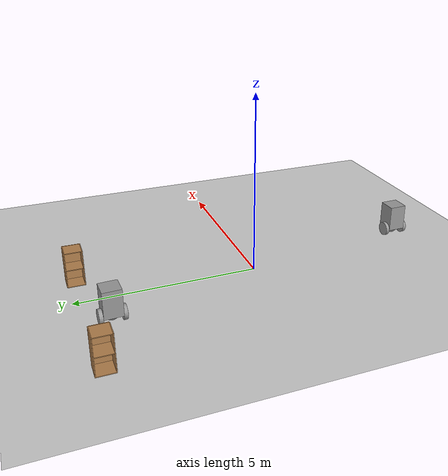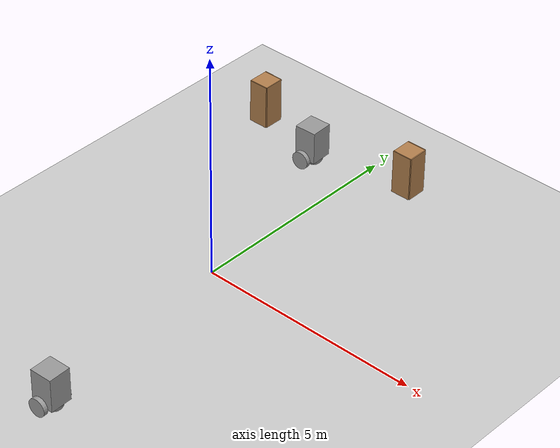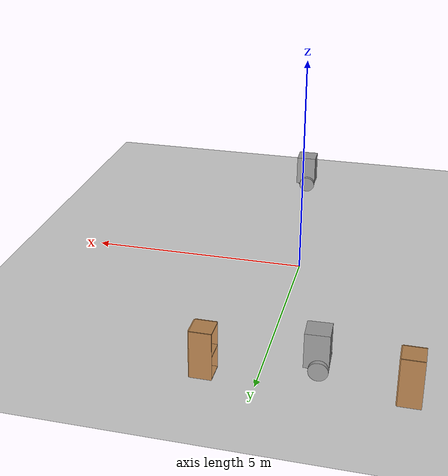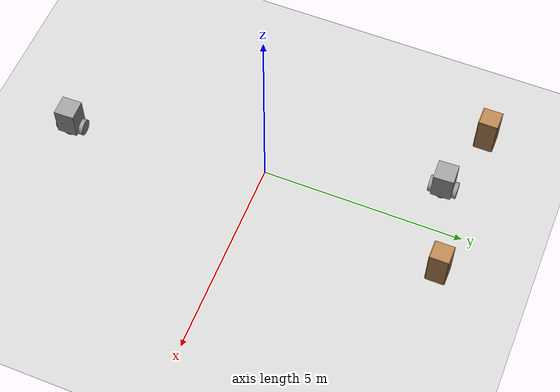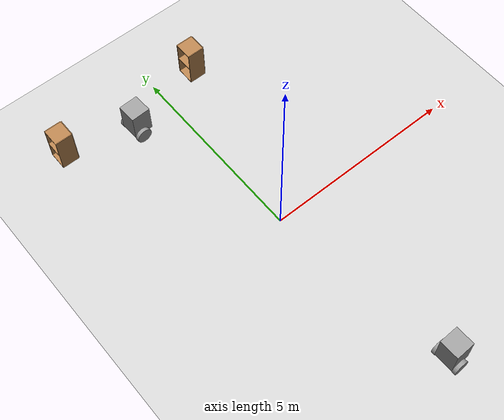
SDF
<sdf version="1.6">
 <world name="default">
  <model name="ground_plane">
   <static>1</static>
   <link name="link">
    <collision name="collision">
     <geometry><plane><normal>0 0 1</normal><size>100 100</size></plane></geometry>
     <surface><friction><ode><mu>100</mu><mu2>50</mu2></ode></friction></surface>
    </collision>
    <visual name="visual">
     <cast_shadows>0</cast_shadows>
     <geometry><plane><normal>0 0 1</normal><size>100 100</size></plane></geometry>
     <material>
      <script><uri>file://media/materials/scripts/gazebo.material</uri><name>Gazebo/Grey</name></script>
     </material>
    </visual>
   </link>
  </model>
  <model name="cabinet">
   <static>1</static>
   <link name="cabinet_bottom_plate">
    <inertial>
     <pose>0 0 -1 0 -0 0</pose>
     <inertia><ixx>2.05</ixx><ixy>0</ixy><ixz>0</ixz><iyy>2.05</iyy><iyz>0</iyz><izz>2.05</izz></inertia>
     <mass>25</mass>
    </inertial>
    <collision name="cabinet_bottom_plate_geom">
     <pose>0 0 0.01 0 -0 0</pose>
     <geometry><box><size>0.45 0.45 0.02</size></box></geometry>
    </collision>
    <visual name="cabinet_bottom_plate_geom_visual">
     <pose>0 0 0.01 0 -0 0</pose>
     <geometry><box><size>0.45 0.45 0.02</size></box></geometry>
     <material>
      <script><uri>file://media/materials/scripts/gazebo.material</uri><name>Gazebo/Wood</name></script>
     </material>
    </visual>
    <collision name="cabinet_bottom_plate_geom_cabinet_back_plate">
     <pose>0.235 0 0.51 0 -0 0</pose>
     <geometry><box><size>0.02 0.45 1.02</size></box></geometry>
    </collision>
    <visual name="cabinet_bottom_plate_geom_cabinet_back_plate_visual">
     <pose>0.235 0 0.51 0 -0 0</pose>
     <geometry><box><size>0.02 0.45 1.02</size></box></geometry>
     <material>
      <script><uri>file://media/materials/scripts/gazebo.material</uri><name>Gazebo/Wood</name></script>
     </material>
    </visual>
    <collision name="cabinet_bottom_plate_geom_cabinet_left_plate">
     <pose>0 0.235 0.51 0 -0 0</pose>
     <geometry><box><size>0.45 0.02 1.02</size></box></geometry>
    </collision>
    <visual name="cabinet_bottom_plate_geom_cabinet_left_plate_visual">
     <pose>0 0.235 0.51 0 -0 0</pose>
     <geometry><box><size>0.45 0.02 1.02</size></box></geometry>
     <material>
      <script><uri>file://media/materials/scripts/gazebo.material</uri><name>Gazebo/Wood</name></script>
     </material>
    </visual>
    <collision name="cabinet_bottom_plate_geom_cabinet_middle_plate">
     <pose>0 0 0.51 0 -0 0</pose>
     <geometry><box><size>0.45 0.45 0.02</size></box></geometry>
    </collision>
    <visual name="cabinet_bottom_plate_geom_cabinet_middle_plate_visual">
     <pose>0 0 0.51 0 -0 0</pose>
     <geometry><box><size>0.45 0.45 0.02</size></box></geometry>
     <material>
      <script><uri>file://media/materials/scripts/gazebo.material</uri><name>Gazebo/Wood</name></script>
     </material>
    </visual>
    <collision name="cabinet_bottom_plate_geom_cabinet_right_plate">
     <pose>0 -0.235 0.51 0 -0 0</pose>
     <geometry><box><size>0.45 0.02 1.02</size></box></geometry>
    </collision>
    <visual name="cabinet_bottom_plate_geom_cabinet_right_plate_visual">
     <pose>0 -0.235 0.51 0 -0 0</pose>
     <geometry><box><size>0.45 0.02 1.02</size></box></geometry>
     <material>
      <script><uri>file://media/materials/scripts/gazebo.material</uri><name>Gazebo/Wood</name></script>
     </material>
    </visual>
    <collision name="cabinet_bottom_plate_geom_cabinet_top_plate">
     <pose>0 0 1.01 0 -0 0</pose>
     <geometry><box><size>0.45 0.45 0.02</size></box></geometry>
    </collision>
    <visual name="cabinet_bottom_plate_geom_cabinet_top_plate_visual">
     <pose>0 0 1.01 0 -0 0</pose>
     <geometry><box><size>0.45 0.45 0.02</size></box></geometry>
     <material>
      <script><uri>file://media/materials/scripts/gazebo.material</uri><name>Gazebo/Wood</name></script>
     </material>
    </visual>
   </link>
   <pose>-2.86631 4.69505 0 0 -0 0</pose>
  </model>
  <model name="cabinet_clone">
   <static>1</static>
   <link name="cabinet_bottom_plate">
    <inertial>
     <pose>0 0 -1 0 -0 0</pose>
     <inertia><ixx>2.05</ixx><ixy>0</ixy><ixz>0</ixz><iyy>2.05</iyy><iyz>0</iyz><izz>2.05</izz></inertia>
     <mass>25</mass>
    </inertial>
    <collision name="cabinet_bottom_plate_geom">
     <pose>0 0 0.01 0 -0 0</pose>
     <geometry><box><size>0.45 0.45 0.02</size></box></geometry>
    </collision>
    <visual name="cabinet_bottom_plate_geom_visual">
     <pose>0 0 0.01 0 -0 0</pose>
     <geometry><box><size>0.45 0.45 0.02</size></box></geometry>
     <material>
      <script><uri>file://media/materials/scripts/gazebo.material</uri><name>Gazebo/Wood</name></script>
     </material>
    </visual>
    <collision name="cabinet_bottom_plate_geom_cabinet_back_plate">
     <pose>0.235 0 0.51 0 -0 0</pose>
     <geometry><box><size>0.02 0.45 1.02</size></box></geometry>
    </collision>
    <visual name="cabinet_bottom_plate_geom_cabinet_back_plate_visual">
     <pose>0.235 0 0.51 0 -0 0</pose>
     <geometry><box><size>0.02 0.45 1.02</size></box></geometry>
     <material>
      <script><uri>file://media/materials/scripts/gazebo.material</uri><name>Gazebo/Wood</name></script>
     </material>
    </visual>
    <collision name="cabinet_bottom_plate_geom_cabinet_left_plate">
     <pose>0 0.235 0.51 0 -0 0</pose>
     <geometry><box><size>0.45 0.02 1.02</size></box></geometry>
    </collision>
    <visual name="cabinet_bottom_plate_geom_cabinet_left_plate_visual">
     <pose>0 0.235 0.51 0 -0 0</pose>
     <geometry><box><size>0.45 0.02 1.02</size></box></geometry>
     <material>
      <script><uri>file://media/materials/scripts/gazebo.material</uri><name>Gazebo/Wood</name></script>
     </material>
    </visual>
    <collision name="cabinet_bottom_plate_geom_cabinet_middle_plate">
     <pose>0 0 0.51 0 -0 0</pose>
     <geometry><box><size>0.45 0.45 0.02</size></box></geometry>
    </collision>
    <visual name="cabinet_bottom_plate_geom_cabinet_middle_plate_visual">
     <pose>0 0 0.51 0 -0 0</pose>
     <geometry><box><size>0.45 0.45 0.02</size></box></geometry>
     <material>
      <script><uri>file://media/materials/scripts/gazebo.material</uri><name>Gazebo/Wood</name></script>
     </material>
    </visual>
    <collision name="cabinet_bottom_plate_geom_cabinet_right_plate">
     <pose>0 -0.235 0.51 0 -0 0</pose>
     <geometry><box><size>0.45 0.02 1.02</size></box></geometry>
    </collision>
    <visual name="cabinet_bottom_plate_geom_cabinet_right_plate_visual">
     <pose>0 -0.235 0.51 0 -0 0</pose>
     <geometry><box><size>0.45 0.02 1.02</size></box></geometry>
     <material>
      <script><uri>file://media/materials/scripts/gazebo.material</uri><name>Gazebo/Wood</name></script>
     </material>
    </visual>
    <collision name="cabinet_bottom_plate_geom_cabinet_top_plate">
     <pose>0 0 1.01 0 -0 0</pose>
     <geometry><box><size>0.45 0.45 0.02</size></box></geometry>
    </collision>
    <visual name="cabinet_bottom_plate_geom_cabinet_top_plate_visual">
     <pose>0 0 1.01 0 -0 0</pose>
     <geometry><box><size>0.45 0.45 0.02</size></box></geometry>
     <material>
      <script><uri>file://media/materials/scripts/gazebo.material</uri><name>Gazebo/Wood</name></script>
     </material>
    </visual>
   </link>
   <pose>1.06497 4.7613 0 0 -0 0</pose>
  </model>
  <model name="myrobot">
   <link name="link_0">
    <pose>0.0125 0 0.28125 0 -0 0</pose>
    <inertial>
     <mass>1</mass>
     <inertia>
      <ixx>0.166667</ixx>
      <ixy>0</ixy>
      <ixz>0</ixz>
      <iyy>0.166667</iyy>
      <iyz>0</iyz>
      <izz>0.166667</izz>
     </inertia>
    </inertial>
    <visual name="visual">
     <geometry><box><size>0.5 0.5 0.75</size></box></geometry>
     <material>
      <lighting>1</lighting>
      <script><uri>file://media/materials/scripts/gazebo.material</uri><name>Gazebo/Grey</name></script>
      <ambient>0.3 0.3 0.3 1</ambient>
      <diffuse>0.7 0.7 0.7 1</diffuse>
      <specular>0.01 0.01 0.01 1</specular>
      <emissive>0 0 0 1</emissive>
      <shader type="vertex"><normal_map>__default__</normal_map></shader>
     </material>
    </visual>
    <collision name="collision">
     <geometry><box><size>0.5 0.5 0.75</size></box></geometry>
     <surface>
      <friction>
       <ode><mu>1</mu><mu2>1</mu2><fdir1>0 0 0</fdir1><slip1>0</slip1><slip2>0</slip2></ode>
       <torsional>
        <coefficient>1</coefficient>
        <patch_radius>0</patch_radius>
        <surface_radius>0</surface_radius>
        <use_patch_radius>1</use_patch_radius>
        <ode><slip>0</slip></ode>
       </torsional>
      </friction>
      <bounce><restitution_coefficient>0</restitution_coefficient><threshold>1e+06</threshold></bounce>
      <contact>
       <collide_without_contact>0</collide_without_contact>
       <collide_without_contact_bitmask>1</collide_without_contact_bitmask>
       <collide_bitmask>1</collide_bitmask>
       <ode>
        <soft_cfm>0</soft_cfm>
        <soft_erp>0.2</soft_erp>
        <kp>1e+13</kp>
        <kd>1</kd>
        <max_vel>0.01</max_vel>
        <min_depth>0</min_depth>
       </ode>
       <bullet>
        <split_impulse>1</split_impulse>
        <split_impulse_penetration_threshold>-0.01</split_impulse_penetration_threshold>
        <soft_cfm>0</soft_cfm>
        <soft_erp>0.2</soft_erp>
        <kp>1e+13</kp>
        <kd>1</kd>
       </bullet>
      </contact>
     </surface>
    </collision>
   </link>
   <link name="link_1">
    <pose>-0.0375 0.300019 -0.09375 1.5707 -0 0</pose>
    <inertial>
     <mass>1</mass>
     <inertia><ixx>0.145833</ixx><ixy>0</ixy><ixz>0</ixz><iyy>0.145833</iyy><iyz>0</iyz><izz>0.125</izz></inertia>
    </inertial>
    <visual name="visual">
     <geometry><cylinder><radius>0.2</radius><length>0.1</length></cylinder></geometry>
     <material>
      <lighting>1</lighting>
      <script><uri>file://media/materials/scripts/gazebo.material</uri><name>Gazebo/Grey</name></script>
      <ambient>0.3 0.3 0.3 1</ambient>
      <diffuse>0.7 0.7 0.7 1</diffuse>
      <specular>0.01 0.01 0.01 1</specular>
      <emissive>0 0 0 1</emissive>
      <shader type="vertex"><normal_map>__default__</normal_map></shader>
     </material>
    </visual>
    <collision name="collision">
     <geometry><cylinder><radius>0.2</radius><length>0.1</length></cylinder></geometry>
     <surface>
      <friction>
       <ode><mu>1</mu><mu2>1</mu2><fdir1>0 0 0</fdir1><slip1>0</slip1><slip2>0</slip2></ode>
       <torsional>
        <coefficient>1</coefficient>
        <patch_radius>0</patch_radius>
        <surface_radius>0</surface_radius>
        <use_patch_radius>1</use_patch_radius>
        <ode><slip>0</slip></ode>
       </torsional>
      </friction>
      <bounce><restitution_coefficient>0</restitution_coefficient><threshold>1e+06</threshold></bounce>
      <contact>
       <collide_without_contact>0</collide_without_contact>
       <collide_without_contact_bitmask>1</collide_without_contact_bitmask>
       <collide_bitmask>1</collide_bitmask>
       <ode>
        <soft_cfm>0</soft_cfm>
        <soft_erp>0.2</soft_erp>
        <kp>1e+13</kp>
        <kd>1</kd>
        <max_vel>0.01</max_vel>
        <min_depth>0</min_depth>
       </ode>
       <bullet>
        <split_impulse>1</split_impulse>
        <split_impulse_penetration_threshold>-0.01</split_impulse_penetration_threshold>
        <soft_cfm>0</soft_cfm>
        <soft_erp>0.2</soft_erp>
        <kp>1e+13</kp>
        <kd>1</kd>
       </bullet>
      </contact>
     </surface>
    </collision>
   </link>
   <link name="link_1_clone">
    <pose>-0.0375 -0.300019 -0.09375 1.5707 -0 0</pose>
    <inertial>
     <mass>1</mass>
     <inertia><ixx>0.145833</ixx><ixy>0</ixy><ixz>0</ixz><iyy>0.145833</iyy><iyz>0</iyz><izz>0.125</izz></inertia>
    </inertial>
    <visual name="visual">
     <geometry><cylinder><radius>0.2</radius><length>0.1</length></cylinder></geometry>
     <material>
      <lighting>1</lighting>
      <script><uri>file://media/materials/scripts/gazebo.material</uri><name>Gazebo/Grey</name></script>
      <ambient>0.3 0.3 0.3 1</ambient>
      <diffuse>0.7 0.7 0.7 1</diffuse>
      <specular>0.01 0.01 0.01 1</specular>
      <emissive>0 0 0 1</emissive>
      <shader type="vertex"><normal_map>__default__</normal_map></shader>
     </material>
    </visual>
    <collision name="collision">
     <geometry><cylinder><radius>0.2</radius><length>0.1</length></cylinder></geometry>
     <surface>
      <friction>
       <ode><mu>1</mu><mu2>1</mu2><fdir1>0 0 0</fdir1><slip1>0</slip1><slip2>0</slip2></ode>
       <torsional>
        <coefficient>1</coefficient>
        <patch_radius>0</patch_radius>
        <surface_radius>0</surface_radius>
        <use_patch_radius>1</use_patch_radius>
        <ode><slip>0</slip></ode>
       </torsional>
      </friction>
      <bounce><restitution_coefficient>0</restitution_coefficient><threshold>1e+06</threshold></bounce>
      <contact>
       <collide_without_contact>0</collide_without_contact>
       <collide_without_contact_bitmask>1</collide_without_contact_bitmask>
       <collide_bitmask>1</collide_bitmask>
       <ode>
        <soft_cfm>0</soft_cfm>
        <soft_erp>0.2</soft_erp>
        <kp>1e+13</kp>
        <kd>1</kd>
        <max_vel>0.01</max_vel>
        <min_depth>0</min_depth>
       </ode>
       <bullet>
        <split_impulse>1</split_impulse>
        <split_impulse_penetration_threshold>-0.01</split_impulse_penetration_threshold>
        <soft_cfm>0</soft_cfm>
        <soft_erp>0.2</soft_erp>
        <kp>1e+13</kp>
        <kd>1</kd>
       </bullet>
      </contact>
     </surface>
    </collision>
   </link>
   <link name="link_2">
    <pose>0.0625 0 -0.09375 0 -0 0</pose>
    <inertial>
     <mass>1</mass>
     <inertia><ixx>0.1</ixx><ixy>0</ixy><ixz>0</ixz><iyy>0.1</iyy><iyz>0</iyz><izz>0.1</izz></inertia>
    </inertial>
    <visual name="visual">
     <geometry><sphere><radius>0.2</radius></sphere></geometry>
     <material>
      <lighting>1</lighting>
      <script><uri>file://media/materials/scripts/gazebo.material</uri><name>Gazebo/Grey</name></script>
      <ambient>0.3 0.3 0.3 1</ambient>
      <diffuse>0.7 0.7 0.7 1</diffuse>
      <specular>0.01 0.01 0.01 1</specular>
      <emissive>0 0 0 1</emissive>
      <shader type="vertex"><normal_map>__default__</normal_map></shader>
     </material>
    </visual>
    <collision name="collision">
     <geometry><sphere><radius>0.2</radius></sphere></geometry>
     <surface>
      <friction>
       <ode><mu>1</mu><mu2>1</mu2><fdir1>0 0 0</fdir1><slip1>0</slip1><slip2>0</slip2></ode>
       <torsional>
        <coefficient>1</coefficient>
        <patch_radius>0</patch_radius>
        <surface_radius>0</surface_radius>
        <use_patch_radius>1</use_patch_radius>
        <ode><slip>0</slip></ode>
       </torsional>
      </friction>
      <bounce><restitution_coefficient>0</restitution_coefficient><threshold>1e+06</threshold></bounce>
      <contact>
       <collide_without_contact>0</collide_without_contact>
       <collide_without_contact_bitmask>1</collide_without_contact_bitmask>
       <collide_bitmask>1</collide_bitmask>
       <ode>
        <soft_cfm>0</soft_cfm>
        <soft_erp>0.2</soft_erp>
        <kp>1e+13</kp>
        <kd>1</kd>
        <max_vel>0.01</max_vel>
        <min_depth>0</min_depth>
       </ode>
       <bullet>
        <split_impulse>1</split_impulse>
        <split_impulse_penetration_threshold>-0.01</split_impulse_penetration_threshold>
        <soft_cfm>0</soft_cfm>
        <soft_erp>0.2</soft_erp>
        <kp>1e+13</kp>
        <kd>1</kd>
       </bullet>
      </contact>
     </surface>
    </collision>
   </link>
   <joint name="link_0_JOINT_1" type="revolute">
    <parent>link_0</parent>
    <child>link_1</child>
    <axis>
     <xyz>0 0 1</xyz>
     <use_parent_model_frame>0</use_parent_model_frame>
     <limit>
      <lower>-1.79769e+308</lower>
      <upper>1.79769e+308</upper>
      <effort>-1</effort>
      <velocity>-1</velocity>
     </limit>
     <dynamics>
      <spring_reference>0</spring_reference>
      <spring_stiffness>0</spring_stiffness>
      <damping>0</damping>
     </dynamics>
    </axis>
    <physics>
     <ode><limit><cfm>0</cfm><erp>0.2</erp></limit><suspension><cfm>0</cfm><erp>0.2</erp></suspension></ode>
    </physics>
   </joint>
   <joint name="link_0_JOINT_2" type="revolute">
    <parent>link_0</parent>
    <child>link_1_clone</child>
    <axis>
     <xyz>1 0 0</xyz>
     <use_parent_model_frame>0</use_parent_model_frame>
     <limit>
      <lower>-1.79769e+308</lower>
      <upper>1.79769e+308</upper>
      <effort>-1</effort>
      <velocity>-1</velocity>
     </limit>
     <dynamics>
      <spring_reference>0</spring_reference>
      <spring_stiffness>0</spring_stiffness>
      <damping>0</damping>
     </dynamics>
    </axis>
    <physics>
     <ode><limit><cfm>0</cfm><erp>0.2</erp></limit><suspension><cfm>0</cfm><erp>0.2</erp></suspension></ode>
    </physics>
   </joint>
   <joint name="link_0_JOINT_3" type="ball">
    <parent>link_0</parent>
    <child>link_2</child>
    <physics>
     <ode><limit><cfm>0</cfm><erp>0.2</erp></limit><suspension><cfm>0</cfm><erp>0.2</erp></suspension></ode>
    </physics>
   </joint>
   <static>0</static>
   <pose>0.614988 -4.89854 0.293752 3e-06 4.4e-05 0.025422</pose>
  </model>
  <model name="myrobot_1">
   <link name="link_0">
    <pose>0.0125 0 0.28125 0 -0 0</pose>
    <inertial>
     <mass>1</mass>
     <inertia>
      <ixx>0.166667</ixx>
      <ixy>0</ixy>
      <ixz>0</ixz>
      <iyy>0.166667</iyy>
      <iyz>0</iyz>
      <izz>0.166667</izz>
     </inertia>
    </inertial>
    <visual name="visual">
     <geometry><box><size>0.5 0.5 0.75</size></box></geometry>
     <material>
      <lighting>1</lighting>
      <script><uri>file://media/materials/scripts/gazebo.material</uri><name>Gazebo/Grey</name></script>
      <ambient>0.3 0.3 0.3 1</ambient>
      <diffuse>0.7 0.7 0.7 1</diffuse>
      <specular>0.01 0.01 0.01 1</specular>
      <emissive>0 0 0 1</emissive>
      <shader type="vertex"><normal_map>__default__</normal_map></shader>
     </material>
    </visual>
    <collision name="collision">
     <geometry><box><size>0.5 0.5 0.75</size></box></geometry>
     <surface>
      <friction>
       <ode><mu>1</mu><mu2>1</mu2><fdir1>0 0 0</fdir1><slip1>0</slip1><slip2>0</slip2></ode>
       <torsional>
        <coefficient>1</coefficient>
        <patch_radius>0</patch_radius>
        <surface_radius>0</surface_radius>
        <use_patch_radius>1</use_patch_radius>
        <ode><slip>0</slip></ode>
       </torsional>
      </friction>
      <bounce><restitution_coefficient>0</restitution_coefficient><threshold>1e+06</threshold></bounce>
      <contact>
       <collide_without_contact>0</collide_without_contact>
       <collide_without_contact_bitmask>1</collide_without_contact_bitmask>
       <collide_bitmask>1</collide_bitmask>
       <ode>
        <soft_cfm>0</soft_cfm>
        <soft_erp>0.2</soft_erp>
        <kp>1e+13</kp>
        <kd>1</kd>
        <max_vel>0.01</max_vel>
        <min_depth>0</min_depth>
       </ode>
       <bullet>
        <split_impulse>1</split_impulse>
        <split_impulse_penetration_threshold>-0.01</split_impulse_penetration_threshold>
        <soft_cfm>0</soft_cfm>
        <soft_erp>0.2</soft_erp>
        <kp>1e+13</kp>
        <kd>1</kd>
       </bullet>
      </contact>
     </surface>
    </collision>
   </link>
   <link name="link_1">
    <pose>-0.0375 0.300019 -0.09375 1.5707 -0 0</pose>
    <inertial>
     <mass>1</mass>
     <inertia><ixx>0.145833</ixx><ixy>0</ixy><ixz>0</ixz><iyy>0.145833</iyy><iyz>0</iyz><izz>0.125</izz></inertia>
    </inertial>
    <visual name="visual">
     <geometry><cylinder><radius>0.2</radius><length>0.1</length></cylinder></geometry>
     <material>
      <lighting>1</lighting>
      <script><uri>file://media/materials/scripts/gazebo.material</uri><name>Gazebo/Grey</name></script>
      <ambient>0.3 0.3 0.3 1</ambient>
      <diffuse>0.7 0.7 0.7 1</diffuse>
      <specular>0.01 0.01 0.01 1</specular>
      <emissive>0 0 0 1</emissive>
      <shader type="vertex"><normal_map>__default__</normal_map></shader>
     </material>
    </visual>
    <collision name="collision">
     <geometry><cylinder><radius>0.2</radius><length>0.1</length></cylinder></geometry>
     <surface>
      <friction>
       <ode><mu>1</mu><mu2>1</mu2><fdir1>0 0 0</fdir1><slip1>0</slip1><slip2>0</slip2></ode>
       <torsional>
        <coefficient>1</coefficient>
        <patch_radius>0</patch_radius>
        <surface_radius>0</surface_radius>
        <use_patch_radius>1</use_patch_radius>
        <ode><slip>0</slip></ode>
       </torsional>
      </friction>
      <bounce><restitution_coefficient>0</restitution_coefficient><threshold>1e+06</threshold></bounce>
      <contact>
       <collide_without_contact>0</collide_without_contact>
       <collide_without_contact_bitmask>1</collide_without_contact_bitmask>
       <collide_bitmask>1</collide_bitmask>
       <ode>
        <soft_cfm>0</soft_cfm>
        <soft_erp>0.2</soft_erp>
        <kp>1e+13</kp>
        <kd>1</kd>
        <max_vel>0.01</max_vel>
        <min_depth>0</min_depth>
       </ode>
       <bullet>
        <split_impulse>1</split_impulse>
        <split_impulse_penetration_threshold>-0.01</split_impulse_penetration_threshold>
        <soft_cfm>0</soft_cfm>
        <soft_erp>0.2</soft_erp>
        <kp>1e+13</kp>
        <kd>1</kd>
       </bullet>
      </contact>
     </surface>
    </collision>
   </link>
   <link name="link_1_clone">
    <pose>-0.0375 -0.300019 -0.09375 1.5707 -0 0</pose>
    <inertial>
     <mass>1</mass>
     <inertia><ixx>0.145833</ixx><ixy>0</ixy><ixz>0</ixz><iyy>0.145833</iyy><iyz>0</iyz><izz>0.125</izz></inertia>
    </inertial>
    <visual name="visual">
     <geometry><cylinder><radius>0.2</radius><length>0.1</length></cylinder></geometry>
     <material>
      <lighting>1</lighting>
      <script><uri>file://media/materials/scripts/gazebo.material</uri><name>Gazebo/Grey</name></script>
      <ambient>0.3 0.3 0.3 1</ambient>
      <diffuse>0.7 0.7 0.7 1</diffuse>
      <specular>0.01 0.01 0.01 1</specular>
      <emissive>0 0 0 1</emissive>
      <shader type="vertex"><normal_map>__default__</normal_map></shader>
     </material>
    </visual>
    <collision name="collision">
     <geometry><cylinder><radius>0.2</radius><length>0.1</length></cylinder></geometry>
     <surface>
      <friction>
       <ode><mu>1</mu><mu2>1</mu2><fdir1>0 0 0</fdir1><slip1>0</slip1><slip2>0</slip2></ode>
       <torsional>
        <coefficient>1</coefficient>
        <patch_radius>0</patch_radius>
        <surface_radius>0</surface_radius>
        <use_patch_radius>1</use_patch_radius>
        <ode><slip>0</slip></ode>
       </torsional>
      </friction>
      <bounce><restitution_coefficient>0</restitution_coefficient><threshold>1e+06</threshold></bounce>
      <contact>
       <collide_without_contact>0</collide_without_contact>
       <collide_without_contact_bitmask>1</collide_without_contact_bitmask>
       <collide_bitmask>1</collide_bitmask>
       <ode>
        <soft_cfm>0</soft_cfm>
        <soft_erp>0.2</soft_erp>
        <kp>1e+13</kp>
        <kd>1</kd>
        <max_vel>0.01</max_vel>
        <min_depth>0</min_depth>
       </ode>
       <bullet>
        <split_impulse>1</split_impulse>
        <split_impulse_penetration_threshold>-0.01</split_impulse_penetration_threshold>
        <soft_cfm>0</soft_cfm>
        <soft_erp>0.2</soft_erp>
        <kp>1e+13</kp>
        <kd>1</kd>
       </bullet>
      </contact>
     </surface>
    </collision>
   </link>
   <link name="link_2">
    <pose>0.0625 0 -0.09375 0 -0 0</pose>
    <inertial>
     <mass>1</mass>
     <inertia><ixx>0.1</ixx><ixy>0</ixy><ixz>0</ixz><iyy>0.1</iyy><iyz>0</iyz><izz>0.1</izz></inertia>
    </inertial>
    <visual name="visual">
     <geometry><sphere><radius>0.2</radius></sphere></geometry>
     <material>
      <lighting>1</lighting>
      <script><uri>file://media/materials/scripts/gazebo.material</uri><name>Gazebo/Grey</name></script>
      <ambient>0.3 0.3 0.3 1</ambient>
      <diffuse>0.7 0.7 0.7 1</diffuse>
      <specular>0.01 0.01 0.01 1</specular>
      <emissive>0 0 0 1</emissive>
      <shader type="vertex"><normal_map>__default__</normal_map></shader>
     </material>
    </visual>
    <collision name="collision">
     <geometry><sphere><radius>0.2</radius></sphere></geometry>
     <surface>
      <friction>
       <ode><mu>1</mu><mu2>1</mu2><fdir1>0 0 0</fdir1><slip1>0</slip1><slip2>0</slip2></ode>
       <torsional>
        <coefficient>1</coefficient>
        <patch_radius>0</patch_radius>
        <surface_radius>0</surface_radius>
        <use_patch_radius>1</use_patch_radius>
        <ode><slip>0</slip></ode>
       </torsional>
      </friction>
      <bounce><restitution_coefficient>0</restitution_coefficient><threshold>1e+06</threshold></bounce>
      <contact>
       <collide_without_contact>0</collide_without_contact>
       <collide_without_contact_bitmask>1</collide_without_contact_bitmask>
       <collide_bitmask>1</collide_bitmask>
       <ode>
        <soft_cfm>0</soft_cfm>
        <soft_erp>0.2</soft_erp>
        <kp>1e+13</kp>
        <kd>1</kd>
        <max_vel>0.01</max_vel>
        <min_depth>0</min_depth>
       </ode>
       <bullet>
        <split_impulse>1</split_impulse>
        <split_impulse_penetration_threshold>-0.01</split_impulse_penetration_threshold>
        <soft_cfm>0</soft_cfm>
        <soft_erp>0.2</soft_erp>
        <kp>1e+13</kp>
        <kd>1</kd>
       </bullet>
      </contact>
     </surface>
    </collision>
   </link>
   <joint name="link_0_JOINT_1" type="revolute">
    <parent>link_0</parent>
    <child>link_1</child>
    <axis>
     <xyz>0 0 1</xyz>
     <use_parent_model_frame>0</use_parent_model_frame>
     <limit>
      <lower>-1.79769e+308</lower>
      <upper>1.79769e+308</upper>
      <effort>-1</effort>
      <velocity>-1</velocity>
     </limit>
     <dynamics>
      <spring_reference>0</spring_reference>
      <spring_stiffness>0</spring_stiffness>
      <damping>0</damping>
     </dynamics>
    </axis>
    <physics>
     <ode><limit><cfm>0</cfm><erp>0.2</erp></limit><suspension><cfm>0</cfm><erp>0.2</erp></suspension></ode>
    </physics>
   </joint>
   <joint name="link_0_JOINT_2" type="revolute">
    <parent>link_0</parent>
    <child>link_1_clone</child>
    <axis>
     <xyz>1 0 0</xyz>
     <use_parent_model_frame>0</use_parent_model_frame>
     <limit>
      <lower>-1.79769e+308</lower>
      <upper>1.79769e+308</upper>
      <effort>-1</effort>
      <velocity>-1</velocity>
     </limit>
     <dynamics>
      <spring_reference>0</spring_reference>
      <spring_stiffness>0</spring_stiffness>
      <damping>0</damping>
     </dynamics>
    </axis>
    <physics>
     <ode><limit><cfm>0</cfm><erp>0.2</erp></limit><suspension><cfm>0</cfm><erp>0.2</erp></suspension></ode>
    </physics>
   </joint>
   <joint name="link_0_JOINT_3" type="ball">
    <parent>link_0</parent>
    <child>link_2</child>
    <physics>
     <ode><limit><cfm>0</cfm><erp>0.2</erp></limit><suspension><cfm>0</cfm><erp>0.2</erp></suspension></ode>
    </physics>
   </joint>
   <static>0</static>
   <pose>-1.07063 4.17157 0.293752 5e-06 4e-05 0.035986</pose>
  </model>
 </world>
</sdf>
